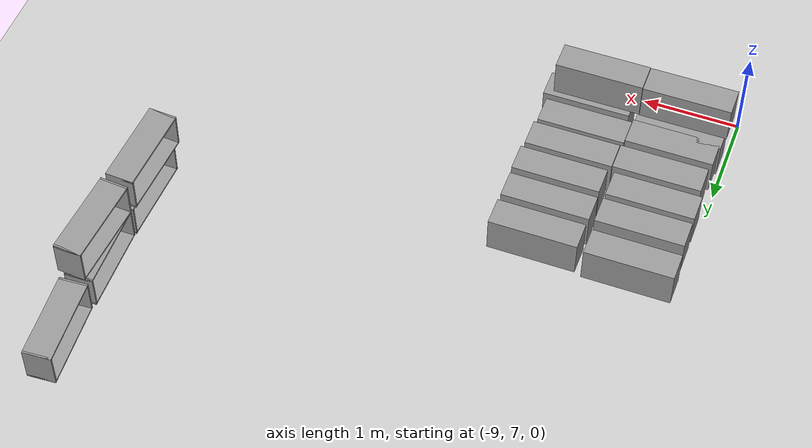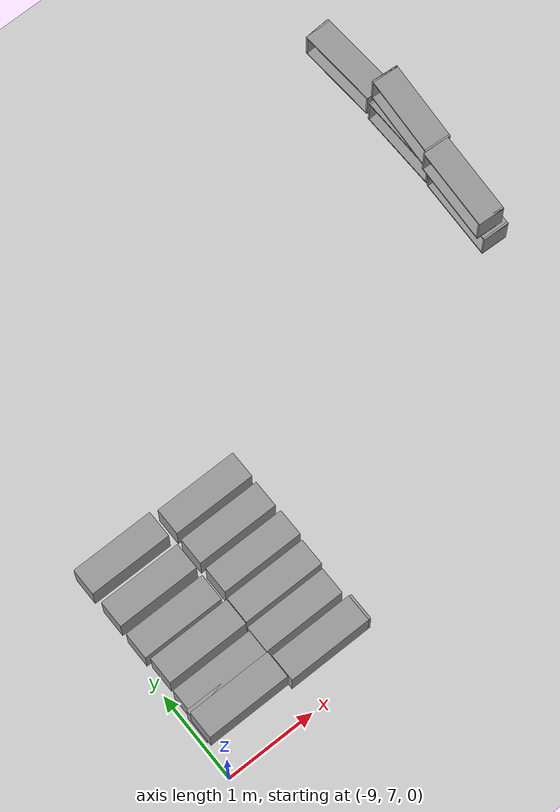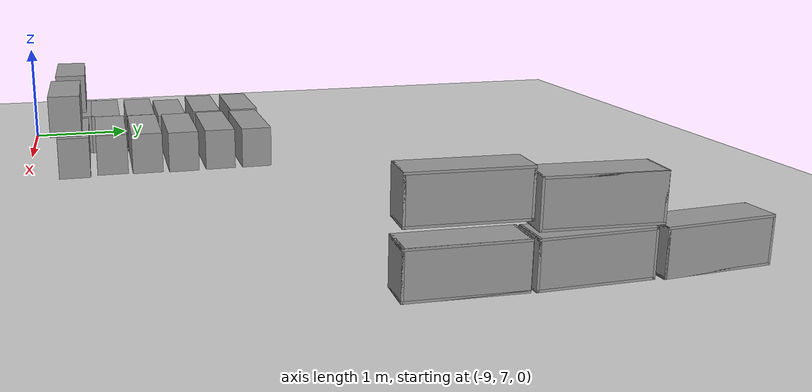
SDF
<sdf version="1.6">
 <world name="default">
  <model name="Box_36x15W_6">
   <link name="Wall">
    <pose>0 0 0.1985 0 -0 0</pose>
    <inertial>
     <mass>5</mass>
     <inertia><ixx>0.1022</ixx><iyy>0.4107</iyy><izz>0.3815</izz><ixy>0</ixy><ixz>0</ixz><iyz>0</iyz></inertia>
    </inertial>
    <collision name="Wall_Collision"><geometry><box><size>0.91 0.296 0.397</size></box></geometry></collision>
    <visual name="Wall_Visual">
     <geometry><box><size>0.91 0.296 0.397</size></box></geometry>
     <material>
      <script><uri>file://media/materials/scripts/gazebo.material</uri><name>Gazebo/Grey</name></script>
      <ambient>1 1 1 1</ambient>
     </material>
    </visual>
   </link>
   <static>1</static>
   <pose>-8.52394 7.42992 0.439504 0 -0 0</pose>
  </model>
  <model name="Box_36x15W_7">
   <link name="Wall">
    <pose>0 0 0.1985 0 -0 0</pose>
    <inertial>
     <mass>5</mass>
     <inertia><ixx>0.1022</ixx><iyy>0.4107</iyy><izz>0.3815</izz><ixy>0</ixy><ixz>0</ixz><iyz>0</iyz></inertia>
    </inertial>
    <collision name="Wall_Collision"><geometry><box><size>0.91 0.296 0.397</size></box></geometry></collision>
    <visual name="Wall_Visual">
     <geometry><box><size>0.91 0.296 0.397</size></box></geometry>
     <material>
      <script><uri>file://media/materials/scripts/gazebo.material</uri><name>Gazebo/Grey</name></script>
      <ambient>1 1 1 1</ambient>
     </material>
    </visual>
   </link>
   <static>1</static>
   <pose>-8.4786 7.77155 0 0 -0 0</pose>
  </model>
  <model name="Box_36x15W_8">
   <link name="Wall">
    <pose>0 0 0.1985 0 -0 0</pose>
    <inertial>
     <mass>5</mass>
     <inertia><ixx>0.1022</ixx><iyy>0.4107</iyy><izz>0.3815</izz><ixy>0</ixy><ixz>0</ixz><iyz>0</iyz></inertia>
    </inertial>
    <collision name="Wall_Collision"><geometry><box><size>0.91 0.296 0.397</size></box></geometry></collision>
    <visual name="Wall_Visual">
     <geometry><box><size>0.91 0.296 0.397</size></box></geometry>
     <material>
      <script><uri>file://media/materials/scripts/gazebo.material</uri><name>Gazebo/Grey</name></script>
      <ambient>1 1 1 1</ambient>
     </material>
    </visual>
   </link>
   <static>1</static>
   <pose>-8.45754 8.14034 0 0 -0 0</pose>
  </model>
  <model name="Box_36x15W_9">
   <link name="Wall">
    <pose>0 0 0.1985 0 -0 0</pose>
    <inertial>
     <mass>5</mass>
     <inertia><ixx>0.1022</ixx><iyy>0.4107</iyy><izz>0.3815</izz><ixy>0</ixy><ixz>0</ixz><iyz>0</iyz></inertia>
    </inertial>
    <collision name="Wall_Collision"><geometry><box><size>0.91 0.296 0.397</size></box></geometry></collision>
    <visual name="Wall_Visual">
     <geometry><box><size>0.91 0.296 0.397</size></box></geometry>
     <material>
      <script><uri>file://media/materials/scripts/gazebo.material</uri><name>Gazebo/Grey</name></script>
      <ambient>1 1 1 1</ambient>
     </material>
    </visual>
   </link>
   <static>1</static>
   <pose>-8.48892 8.47658 -0.031016 0 -0 0</pose>
  </model>
  <model name="Box_36x15W_10">
   <link name="Wall">
    <pose>0 0 0.1985 0 -0 0</pose>
    <inertial>
     <mass>5</mass>
     <inertia><ixx>0.1022</ixx><iyy>0.4107</iyy><izz>0.3815</izz><ixy>0</ixy><ixz>0</ixz><iyz>0</iyz></inertia>
    </inertial>
    <collision name="Wall_Collision"><geometry><box><size>0.91 0.296 0.397</size></box></geometry></collision>
    <visual name="Wall_Visual">
     <geometry><box><size>0.91 0.296 0.397</size></box></geometry>
     <material>
      <script><uri>file://media/materials/scripts/gazebo.material</uri><name>Gazebo/Grey</name></script>
      <ambient>1 1 1 1</ambient>
     </material>
    </visual>
   </link>
   <static>1</static>
   <pose>-8.48932 8.85528 0 0 -0 0</pose>
  </model>
  <model name="Box_36x15W_11">
   <link name="Wall">
    <pose>0 0 0.1985 0 -0 0</pose>
    <inertial>
     <mass>5</mass>
     <inertia><ixx>0.1022</ixx><iyy>0.4107</iyy><izz>0.3815</izz><ixy>0</ixy><ixz>0</ixz><iyz>0</iyz></inertia>
    </inertial>
    <collision name="Wall_Collision"><geometry><box><size>0.91 0.296 0.397</size></box></geometry></collision>
    <visual name="Wall_Visual">
     <geometry><box><size>0.91 0.296 0.397</size></box></geometry>
     <material>
      <script><uri>file://media/materials/scripts/gazebo.material</uri><name>Gazebo/Grey</name></script>
      <ambient>1 1 1 1</ambient>
     </material>
    </visual>
   </link>
   <static>1</static>
   <pose>-8.50341 9.26638 0 0 -0 0</pose>
  </model>
  <model name="Box_36x15W_12">
   <link name="Wall">
    <pose>0 0 0.1985 0 -0 0</pose>
    <inertial>
     <mass>5</mass>
     <inertia><ixx>0.1022</ixx><iyy>0.4107</iyy><izz>0.3815</izz><ixy>0</ixy><ixz>0</ixz><iyz>0</iyz></inertia>
    </inertial>
    <collision name="Wall_Collision"><geometry><box><size>0.91 0.296 0.397</size></box></geometry></collision>
    <visual name="Wall_Visual">
     <geometry><box><size>0.91 0.296 0.397</size></box></geometry>
     <material>
      <script><uri>file://media/materials/scripts/gazebo.material</uri><name>Gazebo/Grey</name></script>
      <ambient>1 1 1 1</ambient>
     </material>
    </visual>
   </link>
   <static>1</static>
   <pose>-7.51098 7.44737 0 0 -0 0</pose>
  </model>
  <model name="Box_36x15W_13">
   <link name="Wall">
    <pose>0 0 0.1985 0 -0 0</pose>
    <inertial>
     <mass>5</mass>
     <inertia><ixx>0.1022</ixx><iyy>0.4107</iyy><izz>0.3815</izz><ixy>0</ixy><ixz>0</ixz><iyz>0</iyz></inertia>
    </inertial>
    <collision name="Wall_Collision"><geometry><box><size>0.91 0.296 0.397</size></box></geometry></collision>
    <visual name="Wall_Visual">
     <geometry><box><size>0.91 0.296 0.397</size></box></geometry>
     <material>
      <script><uri>file://media/materials/scripts/gazebo.material</uri><name>Gazebo/Grey</name></script>
      <ambient>1 1 1 1</ambient>
     </material>
    </visual>
   </link>
   <static>1</static>
   <pose>-7.56543 7.80833 0 0 -0 0</pose>
  </model>
  <model name="Box_36x15W_14">
   <link name="Wall">
    <pose>0 0 0.1985 0 -0 0</pose>
    <inertial>
     <mass>5</mass>
     <inertia><ixx>0.1022</ixx><iyy>0.4107</iyy><izz>0.3815</izz><ixy>0</ixy><ixz>0</ixz><iyz>0</iyz></inertia>
    </inertial>
    <collision name="Wall_Collision"><geometry><box><size>0.91 0.296 0.397</size></box></geometry></collision>
    <visual name="Wall_Visual">
     <geometry><box><size>0.91 0.296 0.397</size></box></geometry>
     <material>
      <script><uri>file://media/materials/scripts/gazebo.material</uri><name>Gazebo/Grey</name></script>
      <ambient>1 1 1 1</ambient>
     </material>
    </visual>
   </link>
   <static>1</static>
   <pose>-7.54111 8.14688 0 0 -0 0</pose>
  </model>
  <model name="Box_36x15W_15">
   <link name="Wall">
    <pose>0 0 0.1985 0 -0 0</pose>
    <inertial>
     <mass>5</mass>
     <inertia><ixx>0.1022</ixx><iyy>0.4107</iyy><izz>0.3815</izz><ixy>0</ixy><ixz>0</ixz><iyz>0</iyz></inertia>
    </inertial>
    <collision name="Wall_Collision"><geometry><box><size>0.91 0.296 0.397</size></box></geometry></collision>
    <visual name="Wall_Visual">
     <geometry><box><size>0.91 0.296 0.397</size></box></geometry>
     <material>
      <script><uri>file://media/materials/scripts/gazebo.material</uri><name>Gazebo/Grey</name></script>
      <ambient>1 1 1 1</ambient>
     </material>
    </visual>
   </link>
   <static>1</static>
   <pose>-7.51828 8.50087 0 0 -0 0</pose>
  </model>
  <model name="Box_36x15W_16">
   <link name="Wall">
    <pose>0 0 0.1985 0 -0 0</pose>
    <inertial>
     <mass>5</mass>
     <inertia><ixx>0.1022</ixx><iyy>0.4107</iyy><izz>0.3815</izz><ixy>0</ixy><ixz>0</ixz><iyz>0</iyz></inertia>
    </inertial>
    <collision name="Wall_Collision"><geometry><box><size>0.91 0.296 0.397</size></box></geometry></collision>
    <visual name="Wall_Visual">
     <geometry><box><size>0.91 0.296 0.397</size></box></geometry>
     <material>
      <script><uri>file://media/materials/scripts/gazebo.material</uri><name>Gazebo/Grey</name></script>
      <ambient>1 1 1 1</ambient>
     </material>
    </visual>
   </link>
   <static>1</static>
   <pose>-7.52733 8.86656 0 0 -0 0</pose>
  </model>
  <model name="Box_36x15W_17">
   <link name="Wall">
    <pose>0 0 0.1985 0 -0 0</pose>
    <inertial>
     <mass>5</mass>
     <inertia><ixx>0.1022</ixx><iyy>0.4107</iyy><izz>0.3815</izz><ixy>0</ixy><ixz>0</ixz><iyz>0</iyz></inertia>
    </inertial>
    <collision name="Wall_Collision"><geometry><box><size>0.91 0.296 0.397</size></box></geometry></collision>
    <visual name="Wall_Visual">
     <geometry><box><size>0.91 0.296 0.397</size></box></geometry>
     <material>
      <script><uri>file://media/materials/scripts/gazebo.material</uri><name>Gazebo/Grey</name></script>
      <ambient>1 1 1 1</ambient>
     </material>
    </visual>
   </link>
   <static>1</static>
   <pose>-7.52129 9.23411 0 0 -0 0</pose>
  </model>
  <model name="Box_36x15W_18">
   <link name="Wall">
    <pose>0 0 0.1985 0 -0 0</pose>
    <inertial>
     <mass>5</mass>
     <inertia><ixx>0.1022</ixx><iyy>0.4107</iyy><izz>0.3815</izz><ixy>0</ixy><ixz>0</ixz><iyz>0</iyz></inertia>
    </inertial>
    <collision name="Wall_Collision"><geometry><box><size>0.91 0.296 0.397</size></box></geometry></collision>
    <visual name="Wall_Visual">
     <geometry><box><size>0.91 0.296 0.397</size></box></geometry>
     <material>
      <script><uri>file://media/materials/scripts/gazebo.material</uri><name>Gazebo/Grey</name></script>
      <ambient>1 1 1 1</ambient>
     </material>
    </visual>
   </link>
   <static>1</static>
   <pose>-8.49675 7.54191 0 0 -0 0</pose>
  </model>
  <model name="Box_36x15W_19">
   <link name="Wall">
    <pose>0 0 0.1985 0 -0 0</pose>
    <inertial>
     <mass>5</mass>
     <inertia><ixx>0.1022</ixx><iyy>0.4107</iyy><izz>0.3815</izz><ixy>0</ixy><ixz>0</ixz><iyz>0</iyz></inertia>
    </inertial>
    <collision name="Wall_Collision"><geometry><box><size>0.91 0.296 0.397</size></box></geometry></collision>
    <visual name="Wall_Visual">
     <geometry><box><size>0.91 0.296 0.397</size></box></geometry>
     <material>
      <script><uri>file://media/materials/scripts/gazebo.material</uri><name>Gazebo/Grey</name></script>
      <ambient>1 1 1 1</ambient>
     </material>
    </visual>
   </link>
   <static>1</static>
   <pose>-7.60091 7.38368 0.394508 0 -0 0</pose>
  </model>
  <model name="Wall_Cabinet_36x15W">
   <link name="Wall_0">
    <pose>0 0 0.01 0 -0 0</pose>
    <inertial>
     <mass>1.9796</mass>
     <inertia><ixx>0.0145</ixx><iyy>0.1511</iyy><izz>0.1367</izz><ixy>0</ixy><ixz>0</ixz><iyz>0</iyz></inertia>
    </inertial>
    <collision name="Wall_0_Collision"><geometry><box><size>0.91 0.296 0.02</size></box></geometry></collision>
    <visual name="Wall_0_Visual">
     <geometry><box><size>0.91 0.296 0.02</size></box></geometry>
     <material>
      <script><uri>file://media/materials/scripts/gazebo.material</uri><name>Gazebo/Grey</name></script>
      <ambient>1 1 1 1</ambient>
     </material>
    </visual>
   </link>
   <joint name="0_2" type="fixed">
    <pose>-0.455 0 0 0 -0 0</pose>
    <parent>Wall_2</parent>
    <child>Wall_0</child>
    <axis>
     <xyz>0 0 1</xyz>
     <use_parent_model_frame>0</use_parent_model_frame>
     <limit><lower>-1e+16</lower><upper>1e+16</upper></limit>
    </axis>
   </joint>
   <joint name="0_4" type="fixed">
    <pose>0.455 0 0 0 -0 0</pose>
    <parent>Wall_4</parent>
    <child>Wall_0</child>
    <axis>
     <xyz>0 0 1</xyz>
     <use_parent_model_frame>0</use_parent_model_frame>
     <limit><lower>-1e+16</lower><upper>1e+16</upper></limit>
    </axis>
   </joint>
   <joint name="0_8" type="fixed">
    <pose>0 -0.148 0 0 -0 0</pose>
    <parent>Wall_8</parent>
    <child>Wall_0</child>
    <axis>
     <xyz>0 0 1</xyz>
     <use_parent_model_frame>0</use_parent_model_frame>
     <limit><lower>-1e+16</lower><upper>1e+16</upper></limit>
    </axis>
   </joint>
   <link name="Wall_2">
    <pose>-0.445 0 0.192 0 -0 0</pose>
    <inertial>
     <mass>0.8353</mass>
     <inertia><ixx>0.0061</ixx><iyy>0.0164</iyy><izz>0.0103</izz><ixy>0</ixy><ixz>0</ixz><iyz>0</iyz></inertia>
    </inertial>
    <collision name="Wall_2_Collision"><geometry><box><size>0.02 0.296 0.384</size></box></geometry></collision>
    <visual name="Wall_2_Visual">
     <geometry><box><size>0.02 0.296 0.384</size></box></geometry>
     <material>
      <script><uri>file://media/materials/scripts/gazebo.material</uri><name>Gazebo/Grey</name></script>
      <ambient>1 1 1 1</ambient>
     </material>
    </visual>
   </link>
   <link name="Wall_4">
    <pose>0.445 0 0.192 0 -0 0</pose>
    <inertial>
     <mass>0.8353</mass>
     <inertia><ixx>0.0061</ixx><iyy>0.0164</iyy><izz>0.0103</izz><ixy>0</ixy><ixz>0</ixz><iyz>0</iyz></inertia>
    </inertial>
    <collision name="Wall_4_Collision"><geometry><box><size>0.02 0.296 0.384</size></box></geometry></collision>
    <visual name="Wall_4_Visual">
     <geometry><box><size>0.02 0.296 0.384</size></box></geometry>
     <material>
      <script><uri>file://media/materials/scripts/gazebo.material</uri><name>Gazebo/Grey</name></script>
      <ambient>1 1 1 1</ambient>
     </material>
    </visual>
   </link>
   <link name="Wall_6">
    <pose>0 0 0.374 0 -0 0</pose>
    <inertial>
     <mass>1.9796</mass>
     <inertia><ixx>0.0145</ixx><iyy>0.1511</iyy><izz>0.1367</izz><ixy>0</ixy><ixz>0</ixz><iyz>0</iyz></inertia>
    </inertial>
    <collision name="Wall_6_Collision"><geometry><box><size>0.91 0.296 0.02</size></box></geometry></collision>
    <visual name="Wall_6_Visual">
     <geometry><box><size>0.91 0.296 0.02</size></box></geometry>
     <material>
      <script><uri>file://media/materials/scripts/gazebo.material</uri><name>Gazebo/Grey</name></script>
      <ambient>1 1 1 1</ambient>
     </material>
    </visual>
   </link>
   <joint name="6_2" type="fixed">
    <pose>-0.455 0 0 0 -0 0</pose>
    <parent>Wall_2</parent>
    <child>Wall_6</child>
    <axis>
     <xyz>0 0 1</xyz>
     <use_parent_model_frame>0</use_parent_model_frame>
     <limit><lower>-1e+16</lower><upper>1e+16</upper></limit>
    </axis>
   </joint>
   <joint name="6_4" type="fixed">
    <pose>0.455 0 0 0 -0 0</pose>
    <parent>Wall_4</parent>
    <child>Wall_6</child>
    <axis>
     <xyz>0 0 1</xyz>
     <use_parent_model_frame>0</use_parent_model_frame>
     <limit><lower>-1e+16</lower><upper>1e+16</upper></limit>
    </axis>
   </joint>
   <joint name="6_8" type="fixed">
    <pose>0 -0.148 0 0 -0 0</pose>
    <parent>Wall_8</parent>
    <child>Wall_6</child>
    <axis>
     <xyz>0 0 1</xyz>
     <use_parent_model_frame>0</use_parent_model_frame>
     <limit><lower>-1e+16</lower><upper>1e+16</upper></limit>
    </axis>
   </joint>
   <link name="Wall_8">
    <pose>0 -0.138 0.19 0 -0 0</pose>
    <inertial>
     <mass>2.5302</mass>
     <inertia><ixx>0.0305</ixx><iyy>0.1732</iyy><izz>0.2035</izz><ixy>0</ixy><ixz>0</ixz><iyz>0</iyz></inertia>
    </inertial>
    <collision name="Wall_8_Collision"><geometry><box><size>0.906 0.02 0.38</size></box></geometry></collision>
    <visual name="Wall_8_Visual">
     <geometry><box><size>0.906 0.02 0.38</size></box></geometry>
     <material>
      <script><uri>file://media/materials/scripts/gazebo.material</uri><name>Gazebo/Grey</name></script>
      <ambient>1 1 1 1</ambient>
     </material>
    </visual>
   </link>
   <joint name="8_2" type="fixed">
    <pose>-0.453 0 0 0 -0 0</pose>
    <parent>Wall_2</parent>
    <child>Wall_8</child>
    <axis>
     <xyz>0 1 0</xyz>
     <use_parent_model_frame>0</use_parent_model_frame>
     <limit><lower>-1e+16</lower><upper>1e+16</upper></limit>
    </axis>
   </joint>
   <joint name="8_4" type="fixed">
    <pose>0.453 0 0 0 -0 0</pose>
    <parent>Wall_4</parent>
    <child>Wall_8</child>
    <axis>
     <xyz>0 1 0</xyz>
     <use_parent_model_frame>0</use_parent_model_frame>
     <limit><lower>-1e+16</lower><upper>1e+16</upper></limit>
    </axis>
   </joint>
   <static>1</static>
   <pose>-3.60531 10.9273 -0 0 -0 1.58525</pose>
  </model>
  <model name="Wall_Cabinet_36x15W_0">
   <link name="Wall_0">
    <pose>0 0 0.01 0 -0 0</pose>
    <inertial>
     <mass>1.9796</mass>
     <inertia><ixx>0.0145</ixx><iyy>0.1511</iyy><izz>0.1367</izz><ixy>0</ixy><ixz>0</ixz><iyz>0</iyz></inertia>
    </inertial>
    <collision name="Wall_0_Collision"><geometry><box><size>0.91 0.296 0.02</size></box></geometry></collision>
    <visual name="Wall_0_Visual">
     <geometry><box><size>0.91 0.296 0.02</size></box></geometry>
     <material>
      <script><uri>file://media/materials/scripts/gazebo.material</uri><name>Gazebo/Grey</name></script>
      <ambient>1 1 1 1</ambient>
     </material>
    </visual>
   </link>
   <joint name="0_2" type="fixed">
    <pose>-0.455 0 0 0 -0 0</pose>
    <parent>Wall_2</parent>
    <child>Wall_0</child>
    <axis>
     <xyz>0 0 1</xyz>
     <use_parent_model_frame>0</use_parent_model_frame>
     <limit><lower>-1e+16</lower><upper>1e+16</upper></limit>
    </axis>
   </joint>
   <joint name="0_4" type="fixed">
    <pose>0.455 0 0 0 -0 0</pose>
    <parent>Wall_4</parent>
    <child>Wall_0</child>
    <axis>
     <xyz>0 0 1</xyz>
     <use_parent_model_frame>0</use_parent_model_frame>
     <limit><lower>-1e+16</lower><upper>1e+16</upper></limit>
    </axis>
   </joint>
   <joint name="0_8" type="fixed">
    <pose>0 -0.148 0 0 -0 0</pose>
    <parent>Wall_8</parent>
    <child>Wall_0</child>
    <axis>
     <xyz>0 0 1</xyz>
     <use_parent_model_frame>0</use_parent_model_frame>
     <limit><lower>-1e+16</lower><upper>1e+16</upper></limit>
    </axis>
   </joint>
   <link name="Wall_2">
    <pose>-0.445 0 0.192 0 -0 0</pose>
    <inertial>
     <mass>0.8353</mass>
     <inertia><ixx>0.0061</ixx><iyy>0.0164</iyy><izz>0.0103</izz><ixy>0</ixy><ixz>0</ixz><iyz>0</iyz></inertia>
    </inertial>
    <collision name="Wall_2_Collision"><geometry><box><size>0.02 0.296 0.384</size></box></geometry></collision>
    <visual name="Wall_2_Visual">
     <geometry><box><size>0.02 0.296 0.384</size></box></geometry>
     <material>
      <script><uri>file://media/materials/scripts/gazebo.material</uri><name>Gazebo/Grey</name></script>
      <ambient>1 1 1 1</ambient>
     </material>
    </visual>
   </link>
   <link name="Wall_4">
    <pose>0.445 0 0.192 0 -0 0</pose>
    <inertial>
     <mass>0.8353</mass>
     <inertia><ixx>0.0061</ixx><iyy>0.0164</iyy><izz>0.0103</izz><ixy>0</ixy><ixz>0</ixz><iyz>0</iyz></inertia>
    </inertial>
    <collision name="Wall_4_Collision"><geometry><box><size>0.02 0.296 0.384</size></box></geometry></collision>
    <visual name="Wall_4_Visual">
     <geometry><box><size>0.02 0.296 0.384</size></box></geometry>
     <material>
      <script><uri>file://media/materials/scripts/gazebo.material</uri><name>Gazebo/Grey</name></script>
      <ambient>1 1 1 1</ambient>
     </material>
    </visual>
   </link>
   <link name="Wall_6">
    <pose>0 0 0.374 0 -0 0</pose>
    <inertial>
     <mass>1.9796</mass>
     <inertia><ixx>0.0145</ixx><iyy>0.1511</iyy><izz>0.1367</izz><ixy>0</ixy><ixz>0</ixz><iyz>0</iyz></inertia>
    </inertial>
    <collision name="Wall_6_Collision"><geometry><box><size>0.91 0.296 0.02</size></box></geometry></collision>
    <visual name="Wall_6_Visual">
     <geometry><box><size>0.91 0.296 0.02</size></box></geometry>
     <material>
      <script><uri>file://media/materials/scripts/gazebo.material</uri><name>Gazebo/Grey</name></script>
      <ambient>1 1 1 1</ambient>
     </material>
    </visual>
   </link>
   <joint name="6_2" type="fixed">
    <pose>-0.455 0 0 0 -0 0</pose>
    <parent>Wall_2</parent>
    <child>Wall_6</child>
    <axis>
     <xyz>0 0 1</xyz>
     <use_parent_model_frame>0</use_parent_model_frame>
     <limit><lower>-1e+16</lower><upper>1e+16</upper></limit>
    </axis>
   </joint>
   <joint name="6_4" type="fixed">
    <pose>0.455 0 0 0 -0 0</pose>
    <parent>Wall_4</parent>
    <child>Wall_6</child>
    <axis>
     <xyz>0 0 1</xyz>
     <use_parent_model_frame>0</use_parent_model_frame>
     <limit><lower>-1e+16</lower><upper>1e+16</upper></limit>
    </axis>
   </joint>
   <joint name="6_8" type="fixed">
    <pose>0 -0.148 0 0 -0 0</pose>
    <parent>Wall_8</parent>
    <child>Wall_6</child>
    <axis>
     <xyz>0 0 1</xyz>
     <use_parent_model_frame>0</use_parent_model_frame>
     <limit><lower>-1e+16</lower><upper>1e+16</upper></limit>
    </axis>
   </joint>
   <link name="Wall_8">
    <pose>0 -0.138 0.19 0 -0 0</pose>
    <inertial>
     <mass>2.5302</mass>
     <inertia><ixx>0.0305</ixx><iyy>0.1732</iyy><izz>0.2035</izz><ixy>0</ixy><ixz>0</ixz><iyz>0</iyz></inertia>
    </inertial>
    <collision name="Wall_8_Collision"><geometry><box><size>0.906 0.02 0.38</size></box></geometry></collision>
    <visual name="Wall_8_Visual">
     <geometry><box><size>0.906 0.02 0.38</size></box></geometry>
     <material>
      <script><uri>file://media/materials/scripts/gazebo.material</uri><name>Gazebo/Grey</name></script>
      <ambient>1 1 1 1</ambient>
     </material>
    </visual>
   </link>
   <joint name="8_2" type="fixed">
    <pose>-0.453 0 0 0 -0 0</pose>
    <parent>Wall_2</parent>
    <child>Wall_8</child>
    <axis>
     <xyz>0 1 0</xyz>
     <use_parent_model_frame>0</use_parent_model_frame>
     <limit><lower>-1e+16</lower><upper>1e+16</upper></limit>
    </axis>
   </joint>
   <joint name="8_4" type="fixed">
    <pose>0.453 0 0 0 -0 0</pose>
    <parent>Wall_4</parent>
    <child>Wall_8</child>
    <axis>
     <xyz>0 1 0</xyz>
     <use_parent_model_frame>0</use_parent_model_frame>
     <limit><lower>-1e+16</lower><upper>1e+16</upper></limit>
    </axis>
   </joint>
   <static>1</static>
   <pose>-3.62637 9.99303 0 0 -0 1.53238</pose>
  </model>
  <model name="Wall_Cabinet_36x15W_1">
   <link name="Wall_0">
    <pose>0 0 0.01 0 -0 0</pose>
    <inertial>
     <mass>1.9796</mass>
     <inertia><ixx>0.0145</ixx><iyy>0.1511</iyy><izz>0.1367</izz><ixy>0</ixy><ixz>0</ixz><iyz>0</iyz></inertia>
    </inertial>
    <collision name="Wall_0_Collision"><geometry><box><size>0.91 0.296 0.02</size></box></geometry></collision>
    <visual name="Wall_0_Visual">
     <geometry><box><size>0.91 0.296 0.02</size></box></geometry>
     <material>
      <script><uri>file://media/materials/scripts/gazebo.material</uri><name>Gazebo/Grey</name></script>
      <ambient>1 1 1 1</ambient>
     </material>
    </visual>
   </link>
   <joint name="0_2" type="fixed">
    <pose>-0.455 0 0 0 -0 0</pose>
    <parent>Wall_2</parent>
    <child>Wall_0</child>
    <axis>
     <xyz>0 0 1</xyz>
     <use_parent_model_frame>0</use_parent_model_frame>
     <limit><lower>-1e+16</lower><upper>1e+16</upper></limit>
    </axis>
   </joint>
   <joint name="0_4" type="fixed">
    <pose>0.455 0 0 0 -0 0</pose>
    <parent>Wall_4</parent>
    <child>Wall_0</child>
    <axis>
     <xyz>0 0 1</xyz>
     <use_parent_model_frame>0</use_parent_model_frame>
     <limit><lower>-1e+16</lower><upper>1e+16</upper></limit>
    </axis>
   </joint>
   <joint name="0_8" type="fixed">
    <pose>0 -0.148 0 0 -0 0</pose>
    <parent>Wall_8</parent>
    <child>Wall_0</child>
    <axis>
     <xyz>0 0 1</xyz>
     <use_parent_model_frame>0</use_parent_model_frame>
     <limit><lower>-1e+16</lower><upper>1e+16</upper></limit>
    </axis>
   </joint>
   <link name="Wall_2">
    <pose>-0.445 0 0.192 0 -0 0</pose>
    <inertial>
     <mass>0.8353</mass>
     <inertia><ixx>0.0061</ixx><iyy>0.0164</iyy><izz>0.0103</izz><ixy>0</ixy><ixz>0</ixz><iyz>0</iyz></inertia>
    </inertial>
    <collision name="Wall_2_Collision"><geometry><box><size>0.02 0.296 0.384</size></box></geometry></collision>
    <visual name="Wall_2_Visual">
     <geometry><box><size>0.02 0.296 0.384</size></box></geometry>
     <material>
      <script><uri>file://media/materials/scripts/gazebo.material</uri><name>Gazebo/Grey</name></script>
      <ambient>1 1 1 1</ambient>
     </material>
    </visual>
   </link>
   <link name="Wall_4">
    <pose>0.445 0 0.192 0 -0 0</pose>
    <inertial>
     <mass>0.8353</mass>
     <inertia><ixx>0.0061</ixx><iyy>0.0164</iyy><izz>0.0103</izz><ixy>0</ixy><ixz>0</ixz><iyz>0</iyz></inertia>
    </inertial>
    <collision name="Wall_4_Collision"><geometry><box><size>0.02 0.296 0.384</size></box></geometry></collision>
    <visual name="Wall_4_Visual">
     <geometry><box><size>0.02 0.296 0.384</size></box></geometry>
     <material>
      <script><uri>file://media/materials/scripts/gazebo.material</uri><name>Gazebo/Grey</name></script>
      <ambient>1 1 1 1</ambient>
     </material>
    </visual>
   </link>
   <link name="Wall_6">
    <pose>0 0 0.374 0 -0 0</pose>
    <inertial>
     <mass>1.9796</mass>
     <inertia><ixx>0.0145</ixx><iyy>0.1511</iyy><izz>0.1367</izz><ixy>0</ixy><ixz>0</ixz><iyz>0</iyz></inertia>
    </inertial>
    <collision name="Wall_6_Collision"><geometry><box><size>0.91 0.296 0.02</size></box></geometry></collision>
    <visual name="Wall_6_Visual">
     <geometry><box><size>0.91 0.296 0.02</size></box></geometry>
     <material>
      <script><uri>file://media/materials/scripts/gazebo.material</uri><name>Gazebo/Grey</name></script>
      <ambient>1 1 1 1</ambient>
     </material>
    </visual>
   </link>
   <joint name="6_2" type="fixed">
    <pose>-0.455 0 0 0 -0 0</pose>
    <parent>Wall_2</parent>
    <child>Wall_6</child>
    <axis>
     <xyz>0 0 1</xyz>
     <use_parent_model_frame>0</use_parent_model_frame>
     <limit><lower>-1e+16</lower><upper>1e+16</upper></limit>
    </axis>
   </joint>
   <joint name="6_4" type="fixed">
    <pose>0.455 0 0 0 -0 0</pose>
    <parent>Wall_4</parent>
    <child>Wall_6</child>
    <axis>
     <xyz>0 0 1</xyz>
     <use_parent_model_frame>0</use_parent_model_frame>
     <limit><lower>-1e+16</lower><upper>1e+16</upper></limit>
    </axis>
   </joint>
   <joint name="6_8" type="fixed">
    <pose>0 -0.148 0 0 -0 0</pose>
    <parent>Wall_8</parent>
    <child>Wall_6</child>
    <axis>
     <xyz>0 0 1</xyz>
     <use_parent_model_frame>0</use_parent_model_frame>
     <limit><lower>-1e+16</lower><upper>1e+16</upper></limit>
    </axis>
   </joint>
   <link name="Wall_8">
    <pose>0 -0.138 0.19 0 -0 0</pose>
    <inertial>
     <mass>2.5302</mass>
     <inertia><ixx>0.0305</ixx><iyy>0.1732</iyy><izz>0.2035</izz><ixy>0</ixy><ixz>0</ixz><iyz>0</iyz></inertia>
    </inertial>
    <collision name="Wall_8_Collision"><geometry><box><size>0.906 0.02 0.38</size></box></geometry></collision>
    <visual name="Wall_8_Visual">
     <geometry><box><size>0.906 0.02 0.38</size></box></geometry>
     <material>
      <script><uri>file://media/materials/scripts/gazebo.material</uri><name>Gazebo/Grey</name></script>
      <ambient>1 1 1 1</ambient>
     </material>
    </visual>
   </link>
   <joint name="8_2" type="fixed">
    <pose>-0.453 0 0 0 -0 0</pose>
    <parent>Wall_2</parent>
    <child>Wall_8</child>
    <axis>
     <xyz>0 1 0</xyz>
     <use_parent_model_frame>0</use_parent_model_frame>
     <limit><lower>-1e+16</lower><upper>1e+16</upper></limit>
    </axis>
   </joint>
   <joint name="8_4" type="fixed">
    <pose>0.453 0 0 0 -0 0</pose>
    <parent>Wall_4</parent>
    <child>Wall_8</child>
    <axis>
     <xyz>0 1 0</xyz>
     <use_parent_model_frame>0</use_parent_model_frame>
     <limit><lower>-1e+16</lower><upper>1e+16</upper></limit>
    </axis>
   </joint>
   <static>1</static>
   <pose>-3.62012 11.8883 -0 0 -0 1.63311</pose>
  </model>
  <model name="Wall_Cabinet_36x15W_3">
   <link name="Wall_0">
    <pose>0 0 0.01 0 -0 0</pose>
    <inertial>
     <mass>1.9796</mass>
     <inertia><ixx>0.0145</ixx><iyy>0.1511</iyy><izz>0.1367</izz><ixy>0</ixy><ixz>0</ixz><iyz>0</iyz></inertia>
    </inertial>
    <collision name="Wall_0_Collision"><geometry><box><size>0.91 0.296 0.02</size></box></geometry></collision>
    <visual name="Wall_0_Visual">
     <geometry><box><size>0.91 0.296 0.02</size></box></geometry>
     <material>
      <script><uri>file://media/materials/scripts/gazebo.material</uri><name>Gazebo/Grey</name></script>
      <ambient>1 1 1 1</ambient>
     </material>
    </visual>
   </link>
   <joint name="0_2" type="fixed">
    <pose>-0.455 0 0 0 -0 0</pose>
    <parent>Wall_2</parent>
    <child>Wall_0</child>
    <axis>
     <xyz>0 0 1</xyz>
     <use_parent_model_frame>0</use_parent_model_frame>
     <limit><lower>-1e+16</lower><upper>1e+16</upper></limit>
    </axis>
   </joint>
   <joint name="0_4" type="fixed">
    <pose>0.455 0 0 0 -0 0</pose>
    <parent>Wall_4</parent>
    <child>Wall_0</child>
    <axis>
     <xyz>0 0 1</xyz>
     <use_parent_model_frame>0</use_parent_model_frame>
     <limit><lower>-1e+16</lower><upper>1e+16</upper></limit>
    </axis>
   </joint>
   <joint name="0_8" type="fixed">
    <pose>0 -0.148 0 0 -0 0</pose>
    <parent>Wall_8</parent>
    <child>Wall_0</child>
    <axis>
     <xyz>0 0 1</xyz>
     <use_parent_model_frame>0</use_parent_model_frame>
     <limit><lower>-1e+16</lower><upper>1e+16</upper></limit>
    </axis>
   </joint>
   <link name="Wall_2">
    <pose>-0.445 0 0.192 0 -0 0</pose>
    <inertial>
     <mass>0.8353</mass>
     <inertia><ixx>0.0061</ixx><iyy>0.0164</iyy><izz>0.0103</izz><ixy>0</ixy><ixz>0</ixz><iyz>0</iyz></inertia>
    </inertial>
    <collision name="Wall_2_Collision"><geometry><box><size>0.02 0.296 0.384</size></box></geometry></collision>
    <visual name="Wall_2_Visual">
     <geometry><box><size>0.02 0.296 0.384</size></box></geometry>
     <material>
      <script><uri>file://media/materials/scripts/gazebo.material</uri><name>Gazebo/Grey</name></script>
      <ambient>1 1 1 1</ambient>
     </material>
    </visual>
   </link>
   <link name="Wall_4">
    <pose>0.445 0 0.192 0 -0 0</pose>
    <inertial>
     <mass>0.8353</mass>
     <inertia><ixx>0.0061</ixx><iyy>0.0164</iyy><izz>0.0103</izz><ixy>0</ixy><ixz>0</ixz><iyz>0</iyz></inertia>
    </inertial>
    <collision name="Wall_4_Collision"><geometry><box><size>0.02 0.296 0.384</size></box></geometry></collision>
    <visual name="Wall_4_Visual">
     <geometry><box><size>0.02 0.296 0.384</size></box></geometry>
     <material>
      <script><uri>file://media/materials/scripts/gazebo.material</uri><name>Gazebo/Grey</name></script>
      <ambient>1 1 1 1</ambient>
     </material>
    </visual>
   </link>
   <link name="Wall_6">
    <pose>0 0 0.374 0 -0 0</pose>
    <inertial>
     <mass>1.9796</mass>
     <inertia><ixx>0.0145</ixx><iyy>0.1511</iyy><izz>0.1367</izz><ixy>0</ixy><ixz>0</ixz><iyz>0</iyz></inertia>
    </inertial>
    <collision name="Wall_6_Collision"><geometry><box><size>0.91 0.296 0.02</size></box></geometry></collision>
    <visual name="Wall_6_Visual">
     <geometry><box><size>0.91 0.296 0.02</size></box></geometry>
     <material>
      <script><uri>file://media/materials/scripts/gazebo.material</uri><name>Gazebo/Grey</name></script>
      <ambient>1 1 1 1</ambient>
     </material>
    </visual>
   </link>
   <joint name="6_2" type="fixed">
    <pose>-0.455 0 0 0 -0 0</pose>
    <parent>Wall_2</parent>
    <child>Wall_6</child>
    <axis>
     <xyz>0 0 1</xyz>
     <use_parent_model_frame>0</use_parent_model_frame>
     <limit><lower>-1e+16</lower><upper>1e+16</upper></limit>
    </axis>
   </joint>
   <joint name="6_4" type="fixed">
    <pose>0.455 0 0 0 -0 0</pose>
    <parent>Wall_4</parent>
    <child>Wall_6</child>
    <axis>
     <xyz>0 0 1</xyz>
     <use_parent_model_frame>0</use_parent_model_frame>
     <limit><lower>-1e+16</lower><upper>1e+16</upper></limit>
    </axis>
   </joint>
   <joint name="6_8" type="fixed">
    <pose>0 -0.148 0 0 -0 0</pose>
    <parent>Wall_8</parent>
    <child>Wall_6</child>
    <axis>
     <xyz>0 0 1</xyz>
     <use_parent_model_frame>0</use_parent_model_frame>
     <limit><lower>-1e+16</lower><upper>1e+16</upper></limit>
    </axis>
   </joint>
   <link name="Wall_8">
    <pose>0 -0.138 0.19 0 -0 0</pose>
    <inertial>
     <mass>2.5302</mass>
     <inertia><ixx>0.0305</ixx><iyy>0.1732</iyy><izz>0.2035</izz><ixy>0</ixy><ixz>0</ixz><iyz>0</iyz></inertia>
    </inertial>
    <collision name="Wall_8_Collision"><geometry><box><size>0.906 0.02 0.38</size></box></geometry></collision>
    <visual name="Wall_8_Visual">
     <geometry><box><size>0.906 0.02 0.38</size></box></geometry>
     <material>
      <script><uri>file://media/materials/scripts/gazebo.material</uri><name>Gazebo/Grey</name></script>
      <ambient>1 1 1 1</ambient>
     </material>
    </visual>
   </link>
   <joint name="8_2" type="fixed">
    <pose>-0.453 0 0 0 -0 0</pose>
    <parent>Wall_2</parent>
    <child>Wall_8</child>
    <axis>
     <xyz>0 1 0</xyz>
     <use_parent_model_frame>0</use_parent_model_frame>
     <limit><lower>-1e+16</lower><upper>1e+16</upper></limit>
    </axis>
   </joint>
   <joint name="8_4" type="fixed">
    <pose>0.453 0 0 0 -0 0</pose>
    <parent>Wall_4</parent>
    <child>Wall_8</child>
    <axis>
     <xyz>0 1 0</xyz>
     <use_parent_model_frame>0</use_parent_model_frame>
     <limit><lower>-1e+16</lower><upper>1e+16</upper></limit>
    </axis>
   </joint>
   <static>1</static>
   <pose>-3.59077 10.948 0.418542 0 -0 1.4992</pose>
  </model>
  <model name="Wall_Cabinet_36x15W_4">
   <link name="Wall_0">
    <pose>0 0 0.01 0 -0 0</pose>
    <inertial>
     <mass>1.9796</mass>
     <inertia><ixx>0.0145</ixx><iyy>0.1511</iyy><izz>0.1367</izz><ixy>0</ixy><ixz>0</ixz><iyz>0</iyz></inertia>
    </inertial>
    <collision name="Wall_0_Collision"><geometry><box><size>0.91 0.296 0.02</size></box></geometry></collision>
    <visual name="Wall_0_Visual">
     <geometry><box><size>0.91 0.296 0.02</size></box></geometry>
     <material>
      <script><uri>file://media/materials/scripts/gazebo.material</uri><name>Gazebo/Grey</name></script>
      <ambient>1 1 1 1</ambient>
     </material>
    </visual>
   </link>
   <joint name="0_2" type="fixed">
    <pose>-0.455 0 0 0 -0 0</pose>
    <parent>Wall_2</parent>
    <child>Wall_0</child>
    <axis>
     <xyz>0 0 1</xyz>
     <use_parent_model_frame>0</use_parent_model_frame>
     <limit><lower>-1e+16</lower><upper>1e+16</upper></limit>
    </axis>
   </joint>
   <joint name="0_4" type="fixed">
    <pose>0.455 0 0 0 -0 0</pose>
    <parent>Wall_4</parent>
    <child>Wall_0</child>
    <axis>
     <xyz>0 0 1</xyz>
     <use_parent_model_frame>0</use_parent_model_frame>
     <limit><lower>-1e+16</lower><upper>1e+16</upper></limit>
    </axis>
   </joint>
   <joint name="0_8" type="fixed">
    <pose>0 -0.148 0 0 -0 0</pose>
    <parent>Wall_8</parent>
    <child>Wall_0</child>
    <axis>
     <xyz>0 0 1</xyz>
     <use_parent_model_frame>0</use_parent_model_frame>
     <limit><lower>-1e+16</lower><upper>1e+16</upper></limit>
    </axis>
   </joint>
   <link name="Wall_2">
    <pose>-0.445 0 0.192 0 -0 0</pose>
    <inertial>
     <mass>0.8353</mass>
     <inertia><ixx>0.0061</ixx><iyy>0.0164</iyy><izz>0.0103</izz><ixy>0</ixy><ixz>0</ixz><iyz>0</iyz></inertia>
    </inertial>
    <collision name="Wall_2_Collision"><geometry><box><size>0.02 0.296 0.384</size></box></geometry></collision>
    <visual name="Wall_2_Visual">
     <geometry><box><size>0.02 0.296 0.384</size></box></geometry>
     <material>
      <script><uri>file://media/materials/scripts/gazebo.material</uri><name>Gazebo/Grey</name></script>
      <ambient>1 1 1 1</ambient>
     </material>
    </visual>
   </link>
   <link name="Wall_4">
    <pose>0.445 0 0.192 0 -0 0</pose>
    <inertial>
     <mass>0.8353</mass>
     <inertia><ixx>0.0061</ixx><iyy>0.0164</iyy><izz>0.0103</izz><ixy>0</ixy><ixz>0</ixz><iyz>0</iyz></inertia>
    </inertial>
    <collision name="Wall_4_Collision"><geometry><box><size>0.02 0.296 0.384</size></box></geometry></collision>
    <visual name="Wall_4_Visual">
     <geometry><box><size>0.02 0.296 0.384</size></box></geometry>
     <material>
      <script><uri>file://media/materials/scripts/gazebo.material</uri><name>Gazebo/Grey</name></script>
      <ambient>1 1 1 1</ambient>
     </material>
    </visual>
   </link>
   <link name="Wall_6">
    <pose>0 0 0.374 0 -0 0</pose>
    <inertial>
     <mass>1.9796</mass>
     <inertia><ixx>0.0145</ixx><iyy>0.1511</iyy><izz>0.1367</izz><ixy>0</ixy><ixz>0</ixz><iyz>0</iyz></inertia>
    </inertial>
    <collision name="Wall_6_Collision"><geometry><box><size>0.91 0.296 0.02</size></box></geometry></collision>
    <visual name="Wall_6_Visual">
     <geometry><box><size>0.91 0.296 0.02</size></box></geometry>
     <material>
      <script><uri>file://media/materials/scripts/gazebo.material</uri><name>Gazebo/Grey</name></script>
      <ambient>1 1 1 1</ambient>
     </material>
    </visual>
   </link>
   <joint name="6_2" type="fixed">
    <pose>-0.455 0 0 0 -0 0</pose>
    <parent>Wall_2</parent>
    <child>Wall_6</child>
    <axis>
     <xyz>0 0 1</xyz>
     <use_parent_model_frame>0</use_parent_model_frame>
     <limit><lower>-1e+16</lower><upper>1e+16</upper></limit>
    </axis>
   </joint>
   <joint name="6_4" type="fixed">
    <pose>0.455 0 0 0 -0 0</pose>
    <parent>Wall_4</parent>
    <child>Wall_6</child>
    <axis>
     <xyz>0 0 1</xyz>
     <use_parent_model_frame>0</use_parent_model_frame>
     <limit><lower>-1e+16</lower><upper>1e+16</upper></limit>
    </axis>
   </joint>
   <joint name="6_8" type="fixed">
    <pose>0 -0.148 0 0 -0 0</pose>
    <parent>Wall_8</parent>
    <child>Wall_6</child>
    <axis>
     <xyz>0 0 1</xyz>
     <use_parent_model_frame>0</use_parent_model_frame>
     <limit><lower>-1e+16</lower><upper>1e+16</upper></limit>
    </axis>
   </joint>
   <link name="Wall_8">
    <pose>0 -0.138 0.19 0 -0 0</pose>
    <inertial>
     <mass>2.5302</mass>
     <inertia><ixx>0.0305</ixx><iyy>0.1732</iyy><izz>0.2035</izz><ixy>0</ixy><ixz>0</ixz><iyz>0</iyz></inertia>
    </inertial>
    <collision name="Wall_8_Collision"><geometry><box><size>0.906 0.02 0.38</size></box></geometry></collision>
    <visual name="Wall_8_Visual">
     <geometry><box><size>0.906 0.02 0.38</size></box></geometry>
     <material>
      <script><uri>file://media/materials/scripts/gazebo.material</uri><name>Gazebo/Grey</name></script>
      <ambient>1 1 1 1</ambient>
     </material>
    </visual>
   </link>
   <joint name="8_2" type="fixed">
    <pose>-0.453 0 0 0 -0 0</pose>
    <parent>Wall_2</parent>
    <child>Wall_8</child>
    <axis>
     <xyz>0 1 0</xyz>
     <use_parent_model_frame>0</use_parent_model_frame>
     <limit><lower>-1e+16</lower><upper>1e+16</upper></limit>
    </axis>
   </joint>
   <joint name="8_4" type="fixed">
    <pose>0.453 0 0 0 -0 0</pose>
    <parent>Wall_4</parent>
    <child>Wall_8</child>
    <axis>
     <xyz>0 1 0</xyz>
     <use_parent_model_frame>0</use_parent_model_frame>
     <limit><lower>-1e+16</lower><upper>1e+16</upper></limit>
    </axis>
   </joint>
   <static>1</static>
   <pose>-3.69617 10.022 0.483426 0 -0 1.51586</pose>
  </model>
  <model name="ground_plane">
   <static>1</static>
   <link name="link">
    <collision name="collision">
     <geometry><plane><normal>0 0 1</normal><size>100 100</size></plane></geometry>
     <surface><friction><ode><mu>100</mu><mu2>50</mu2></ode></friction></surface>
    </collision>
    <visual name="visual">
     <cast_shadows>0</cast_shadows>
     <geometry><plane><normal>0 0 1</normal><size>100 100</size></plane></geometry>
     <material>
      <script><uri>file://media/materials/scripts/gazebo.material</uri><name>Gazebo/Grey</name></script>
     </material>
    </visual>
   </link>
   <pose>0.21962 0.163473 0 0 -0 0</pose>
  </model>
 </world>
</sdf>
